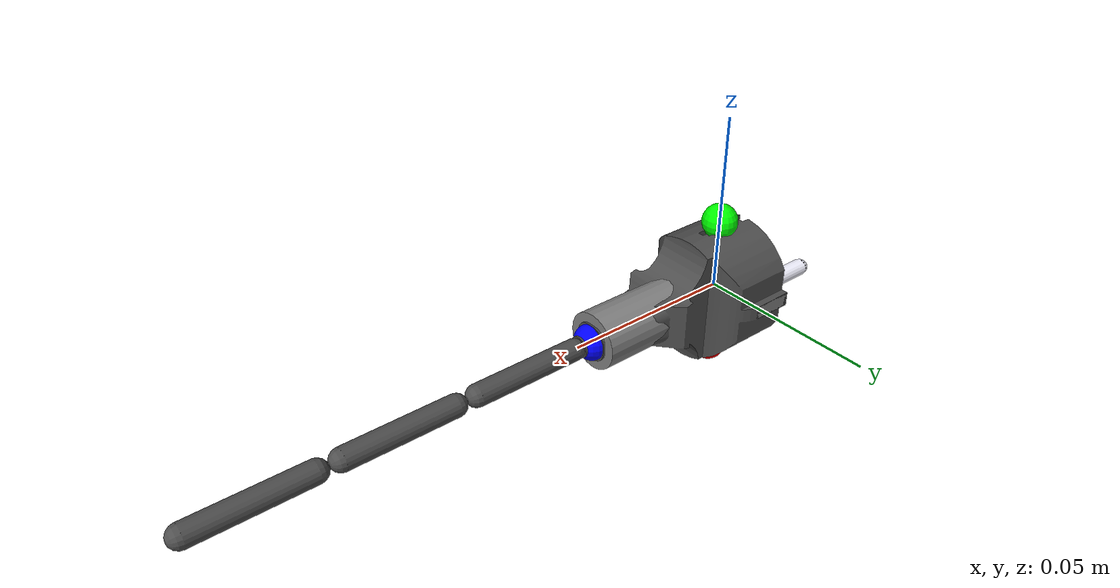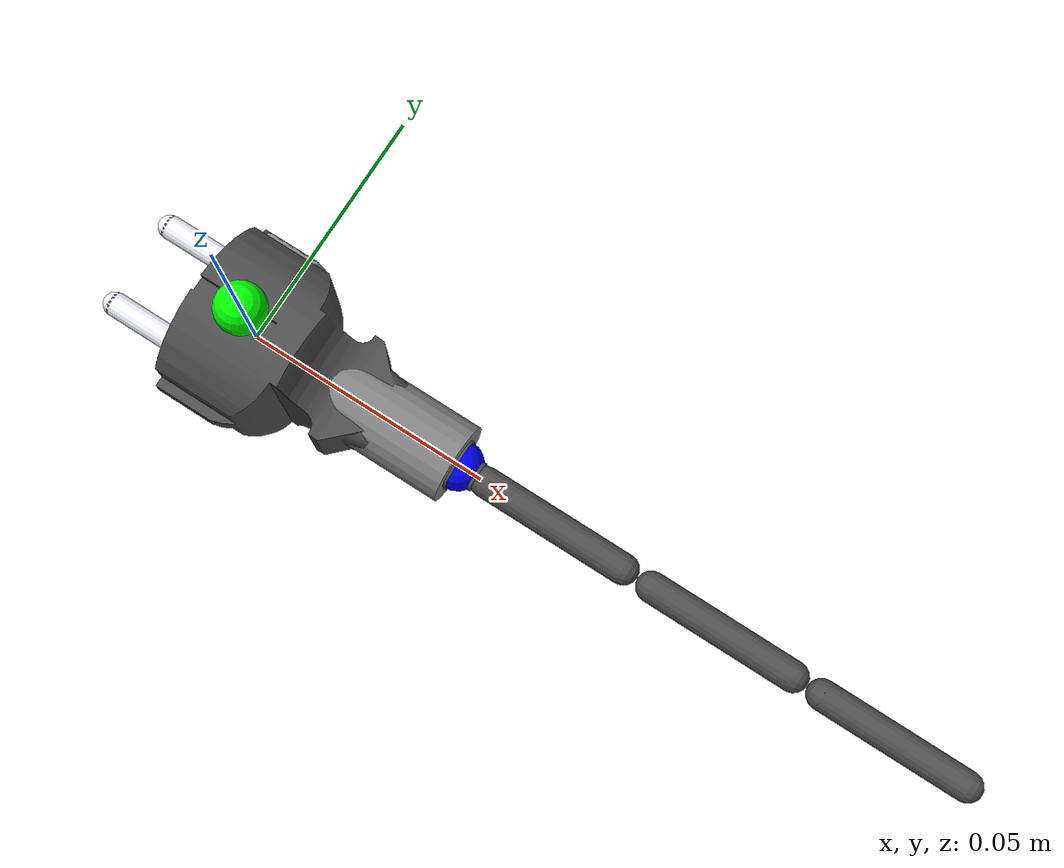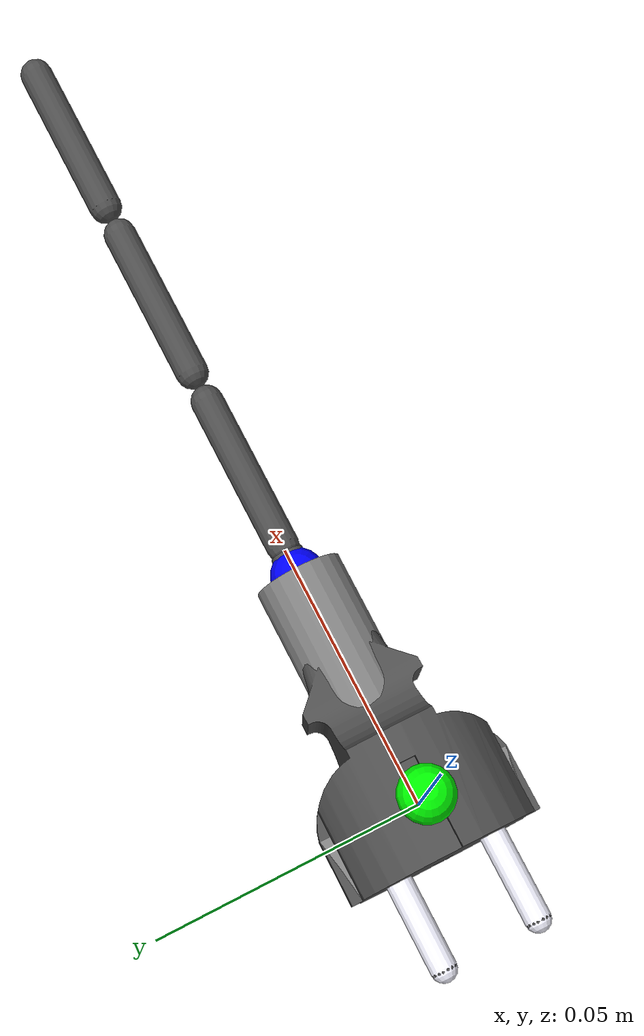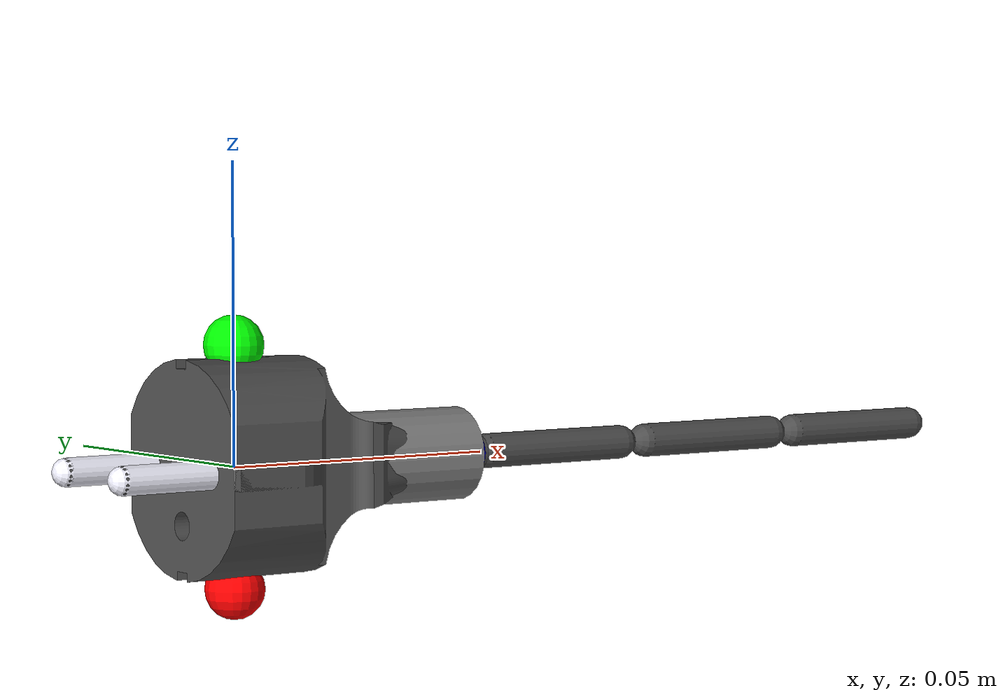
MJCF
<mujoco model="ac_socket">
  <option solver="CG" sdf_iterations="10" sdf_initpoints="20">
    <flag multiccd="enable"/>
  </option>

  <compiler inertiafromgeom="true" exactmeshinertia="true" angle="radian">
  </compiler>

  <asset>
    <mesh file="meshes/ac_plug.stl" name="ac_plug_mesh"/>
  </asset>

  <default>
    <default class="plastic">
      <geom solimp="0.95 0.98 0.001" solref="0.001 1" density="100" friction="0.95 0.3 0.2" group="0" condim="1" />
    </default>

    <default class="rubber">
      <geom solimp="0.95 0.98 0.001" solref="0.001 1" friction="2 0.8 0.7" density="100" group="0" condim="6" />
    </default>

    <default class="metal">
      <geom solimp="0.95 0.98 0.001" solref="0.001 1" density="1000" friction="0.95 0.3 0.2" group="0" condim="1" />
    </default>

    <default class="visual">
      <geom conaffinity="0" contype="0" group="1" mass="1e-8"/>
    </default>
  </default>

  <worldbody>
    <body>
      <body name="object" >
        <body name="offset" pos="-0.02 0 0" euler="0 1.5701 1.5701">
          <!-- visual mesh -->
          <geom name="geom_vis" type="mesh" mesh="ac_plug_mesh"  pos="0 0 0.01"  contype="0" conaffinity="0" group="1" rgba="0.3 0.3 0.3 1"/>
          <geom name="left_rod_vis" type="capsule" size="0.0024 0.008" pos="0.009 0 0.002"  contype="0" conaffinity="0" group="1" rgba="0.95 0.95 1 1" />
          <geom name="right_rod_vis" type="capsule" size="0.0024 0.008" pos="-0.009 0 0.002"  contype="0" conaffinity="0" group="1" rgba="0.95 0.95 1 1"/>

          <!-- collision mesh (made out of primitive shapes) -->
          <geom name="lower_body" class="rubber" type="box" size="0.0175 0.0175 0.01" pos="0 0 0.02" rgba="0 0 0 0"/>
          <geom name="lower_body_left_wing" class="rubber" type="box" size="0.001 0.002 0.006" pos="0.017 0 0.016" />
          <geom name="lower_body_right_wing" class="rubber" type="box" size="0.001 0.002 0.006" pos="-0.017 0 0.016" />
          <geom name="upper_body" class="rubber" type="cylinder" size="0.008 0.015" pos="0 0 0.05" />
          <geom name="left_rod" class="metal" type="capsule" size="0.00205 0.008" pos="0.009 0 0.002" />
          <site name="left_rod_base_site" pos="0.009 0 0.008" size="0.002" rgba="0 0 1 0"/>
          <site name="left_rod_end_site" pos="0.009 0 -0.006" size="0.002" rgba="0 0 1 0"/>
          <geom name="right_rod" class="metal" type="capsule" size="0.00205 0.008" pos="-0.009 0 0.002" />
          <site name="right_rod_base_site" pos="-0.009 0 0.008" size="0.002" rgba="0 0 1 0"/>
          <site name="right_rod_end_site" pos="-0.009 0 -0.006" size="0.002" rgba="0 0 1 0"/>

          <!-- Small wings of the plug but creates contact instability. Maybe use SDF? -->

          <body name="cable0" pos="0 0 0.065" euler="3.1415 0 0">
            <joint name="cable0_j" type="ball" damping="0.01" pos="0 0 0"/>
            <geom name="cable0_geom" class="rubber" type="capsule" pos="0 0 -0.021" size="0.003 0.015" rgba="0.3 0.3 0.3 1" group="0" condim="3" mass="0.001"/>
            <body name="cable1" pos="0 0 -0.036">
              <joint name="cable1_j" type="ball" damping="0.005" pos="0 0 0"/>
              <geom name="cable1_geom" class="rubber" type="capsule" pos="0 0 -0.021" size="0.003 0.015" rgba="0.3 0.3 0.3 1" group="0" condim="3" mass="0.001"/>
              <body name="cable2" pos="0 0 -0.036">
                <joint name="cable2_j" type="ball" damping="0.005" pos="0 0 0"/>
                <geom name="cable2_geom" class="rubber" type="capsule" pos="0 0 -0.021" size="0.003 0.015" rgba="0.3 0.3 0.3 1" group="0" condim="3" mass="0.001"/>
              </body>
            </body>
          </body>
        </body>
      </body>
      <site rgba="1 0 0 1" size="0.005" pos="0 0 -0.02" name="bottom_site"/>
      <site rgba="0 1 0 1" size="0.005" pos="0 0 0.02" name="top_site"/>
      <site rgba="0 0 1 1" size="0.005" pos="0.045 0.0 0" name="horizontal_radius_site"/>
    </body>
  </worldbody>

</mujoco>
